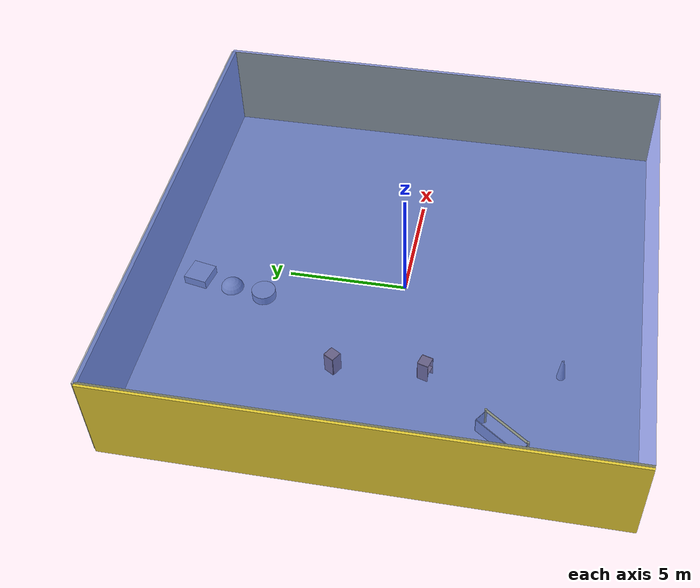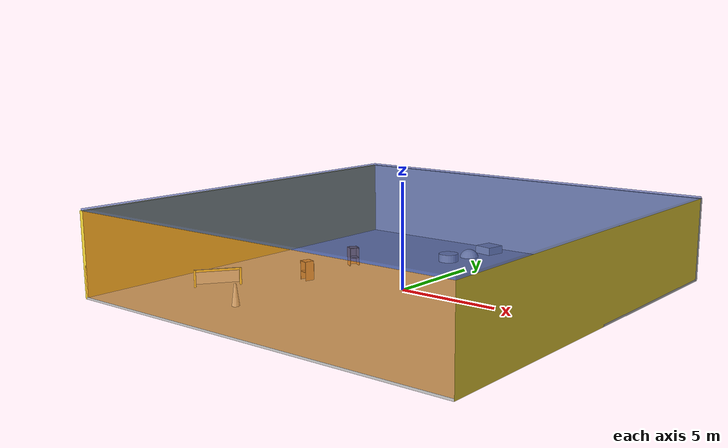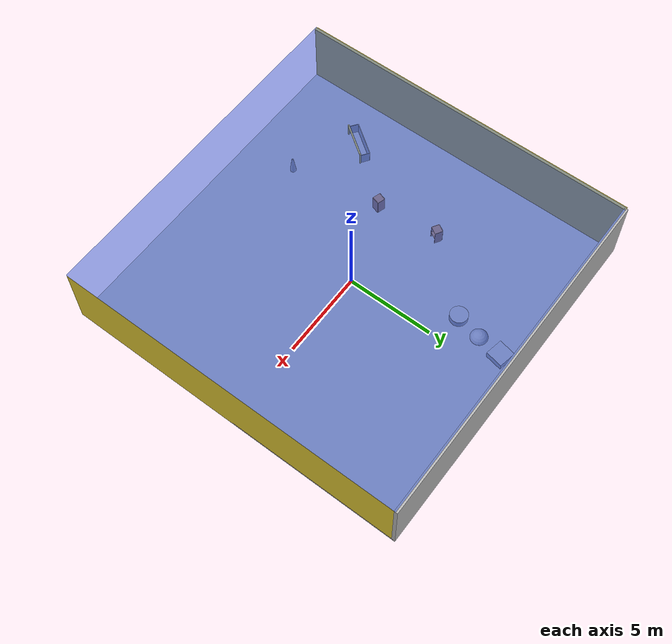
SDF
<sdf version="1.4">
 <world name="default">
  <physics type="ode">
   <max_step_size>0.001</max_step_size>
   <real_time_factor>1</real_time_factor>
   <real_time_update_rate>1000</real_time_update_rate>
   <gravity>0 0 -9.8</gravity>
  </physics>
  <scene><ambient>0.4 0.4 0.4 1</ambient><background>0.7 0.7 0.7 1</background><shadows>1</shadows></scene>
  <model name="Surrounding">
   <static>1</static>
   <link name="Ceiling">
    <collision name="Ceiling_Collision"><geometry><box><size>20 20 0.1</size></box></geometry></collision>
    <visual name="Ceiling_Visual">
     <geometry><box><size>20 20 0.1</size></box></geometry>
     <material>
      <script><uri>file://media/materials/scripts/gazebo.material</uri><name>Gazebo/BlueTransparent</name></script>
     </material>
    </visual>
    <pose>0 0 4.05 0 0 0</pose>
   </link>
   <link name="Wall_South">
    <collision name="Wall_South_Collision">
     <geometry><box><size>20 0 4</size></box></geometry>
     <pose>0 0 2 0 -0 0</pose>
    </collision>
    <visual name="Wall_South_Visual">
     <pose>0 0 2 0 -0 0</pose>
     <geometry><box><size>20 0 4</size></box></geometry>
     <material>
      <script>
       <uri>file://media/materials/scripts/gazebo.material</uri>
       <name>Gazebo/OrangeTransparent</name>
      </script>
     </material>
    </visual>
    <velocity_decay><linear>0</linear><angular>0</angular></velocity_decay>
    <pose>0 -10 0 0 -0 0</pose>
   </link>
   <link name="Wall_East">
    <collision name="Wall_21_Collision">
     <geometry><box><size>20 0 4</size></box></geometry>
     <pose>0 0 2 0 -0 0</pose>
    </collision>
    <visual name="Wall_21_Visual">
     <pose>0 0 2 0 -0 0</pose>
     <geometry><box><size>20 0 4</size></box></geometry>
     <material>
      <script><uri>file://media/materials/scripts/gazebo.material</uri><name>Gazebo/ZincYellow</name></script>
     </material>
    </visual>
    <velocity_decay><linear>0</linear><angular>0</angular></velocity_decay>
    <pose>10 0 0 0 -0 1.5708</pose>
   </link>
   <link name="Wall_North">
    <collision name="Wall_22_Collision">
     <geometry><box><size>20 0.2 4</size></box></geometry>
     <pose>0 0 2 0 -0 0</pose>
    </collision>
    <visual name="Wall_22_Visual">
     <pose>0 0 2 0 -0 0</pose>
     <geometry><box><size>20 0.2 4</size></box></geometry>
     <material>
      <script><uri>file://media/materials/scripts/gazebo.material</uri><name>Gazebo/LightOn</name></script>
     </material>
    </visual>
    <velocity_decay><linear>0</linear><angular>0</angular></velocity_decay>
    <pose>0 10 0 0 -0 0</pose>
   </link>
   <link name="Wall_West">
    <collision name="Wall_23_Collision">
     <geometry><box><size>20 0.2 4</size></box></geometry>
     <pose>0 0 2 0 -0 0</pose>
    </collision>
    <visual name="Wall_23_Visual">
     <pose>0 0 2 0 -0 0</pose>
     <geometry><box><size>20 0.2 4</size></box></geometry>
     <material>
      <script><uri>file://media/materials/scripts/gazebo.material</uri><name>Gazebo/ZincYellow</name></script>
     </material>
    </visual>
    <velocity_decay><linear>0</linear><angular>0</angular></velocity_decay>
    <pose>-10 0 0 0 0 -1.5708</pose>
   </link>
   <link name="Ground_link">
    <collision name="collision">
     <pose>0 0 .05 0 -0 0</pose>
     <geometry><box><size>20 20 0.1</size></box></geometry>
    </collision>
    <visual name="visual">
     <pose>0 0 .05 0 -0 0</pose>
     <geometry><box><size>20 20 0.1</size></box></geometry>
     <material>
      <script><uri>file://media/materials/scripts/gazebo.material</uri><name>Gazebo/LightOff</name></script>
     </material>
    </visual>
   </link>
   <static>1</static>
  </model>
  <spherical_coordinates>
   <surface_model>EARTH_WGS84</surface_model>
   <latitude_deg>0</latitude_deg>
   <longitude_deg>0</longitude_deg>
   <elevation>0</elevation>
   <heading_deg>0</heading_deg>
  </spherical_coordinates>
  <light name="lightball_0" type="diffuse">
   <diffuse>0.8 0.8 0.8 1</diffuse>
   <specular>0.2 0.2 0.2 1</specular>
   <attenuation>
    <range>100</range>
    <constant>0.7</constant>
    <linear>0.01</linear>
    <quadratic>0.001</quadratic>
   </attenuation>
   <direction>-0.5 0.1 -0.9</direction>
   <pose>8.61360150168 7.66941884912 1.32542060527 0 0 0</pose>
  </light>
  <light name="lightball_1" type="diffuse">
   <diffuse>0.8 0.8 0.8 1</diffuse>
   <specular>0.2 0.2 0.2 1</specular>
   <attenuation>
    <range>100</range>
    <constant>0.7</constant>
    <linear>0.01</linear>
    <quadratic>0.001</quadratic>
   </attenuation>
   <direction>-0.5 0.1 -0.9</direction>
   <pose>-7.6250813 -3.20270731093 1.68203188972 0 0 0</pose>
  </light>
  <light name="lightball_2" type="diffuse">
   <diffuse>0.8 0.8 0.8 1</diffuse>
   <specular>0.2 0.2 0.2 1</specular>
   <attenuation>
    <range>100</range>
    <constant>0.7</constant>
    <linear>0.01</linear>
    <quadratic>0.001</quadratic>
   </attenuation>
   <direction>-0.5 0.1 -0.9</direction>
   <pose>-4.08264213738 -2.43255054124 1.72184765137 0 0 0</pose>
  </light>
  <light name="lightball_3" type="diffuse">
   <diffuse>0.8 0.8 0.8 1</diffuse>
   <specular>0.2 0.2 0.2 1</specular>
   <attenuation>
    <range>100</range>
    <constant>0.7</constant>
    <linear>0.01</linear>
    <quadratic>0.001</quadratic>
   </attenuation>
   <direction>-0.5 0.1 -0.9</direction>
   <pose>-9.69860013715 -7.05533082856 1.91088562133 0 0 0</pose>
  </light>
  <light name="lightball_4" type="diffuse">
   <diffuse>0.8 0.8 0.8 1</diffuse>
   <specular>0.2 0.2 0.2 1</specular>
   <attenuation>
    <range>100</range>
    <constant>0.7</constant>
    <linear>0.01</linear>
    <quadratic>0.001</quadratic>
   </attenuation>
   <direction>-0.5 0.1 -0.9</direction>
   <pose>1.66485810036 -6.45032985883 3.03709217242 0 0 0</pose>
  </light>
  <light name="lightball_5" type="diffuse">
   <diffuse>0.8 0.8 0.8 1</diffuse>
   <specular>0.2 0.2 0.2 1</specular>
   <attenuation>
    <range>100</range>
    <constant>0.7</constant>
    <linear>0.01</linear>
    <quadratic>0.001</quadratic>
   </attenuation>
   <direction>-0.5 0.1 -0.9</direction>
   <pose>-8.83620800145 9.04672818305 0.962633889551 0 0 0</pose>
  </light>
  <light name="lightball_6" type="diffuse">
   <diffuse>0.8 0.8 0.8 1</diffuse>
   <specular>0.2 0.2 0.2 1</specular>
   <attenuation>
    <range>100</range>
    <constant>0.7</constant>
    <linear>0.01</linear>
    <quadratic>0.001</quadratic>
   </attenuation>
   <direction>-0.5 0.1 -0.9</direction>
   <pose>-7.94344641218 8.20546765698 0.573421124791 0 0 0</pose>
  </light>
  <light name="lightball_7" type="diffuse">
   <diffuse>0.8 0.8 0.8 1</diffuse>
   <specular>0.2 0.2 0.2 1</specular>
   <attenuation>
    <range>100</range>
    <constant>0.7</constant>
    <linear>0.01</linear>
    <quadratic>0.001</quadratic>
   </attenuation>
   <direction>-0.5 0.1 -0.9</direction>
   <pose>-0.464395370562 -7.29808664371 1.93818107689 0 0 0</pose>
  </light>
  <light name="lightball_8" type="diffuse">
   <diffuse>0.8 0.8 0.8 1</diffuse>
   <specular>0.2 0.2 0.2 1</specular>
   <attenuation>
    <range>100</range>
    <constant>0.7</constant>
    <linear>0.01</linear>
    <quadratic>0.001</quadratic>
   </attenuation>
   <direction>-0.5 0.1 -0.9</direction>
   <pose>8.12060764527 -5.68652472949 2.91218493236 0 0 0</pose>
  </light>
  <light name="lightball_9" type="diffuse">
   <diffuse>0.8 0.8 0.8 1</diffuse>
   <specular>0.2 0.2 0.2 1</specular>
   <attenuation>
    <range>100</range>
    <constant>0.7</constant>
    <linear>0.01</linear>
    <quadratic>0.001</quadratic>
   </attenuation>
   <direction>-0.5 0.1 -0.9</direction>
   <pose>-5.32196706411 6.8293625716 3.10129634335 0 0 0</pose>
  </light>
  <light name="lightball_10" type="diffuse">
   <diffuse>0.8 0.8 0.8 1</diffuse>
   <specular>0.2 0.2 0.2 1</specular>
   <attenuation>
    <range>100</range>
    <constant>0.7</constant>
    <linear>0.01</linear>
    <quadratic>0.001</quadratic>
   </attenuation>
   <direction>-0.5 0.1 -0.9</direction>
   <pose>7.17785248442 7.92132808992 1.22761172317 0 0 0</pose>
  </light>
  <light name="lightball_11" type="diffuse">
   <diffuse>0.8 0.8 0.8 1</diffuse>
   <specular>0.2 0.2 0.2 1</specular>
   <attenuation>
    <range>100</range>
    <constant>0.7</constant>
    <linear>0.01</linear>
    <quadratic>0.001</quadratic>
   </attenuation>
   <direction>-0.5 0.1 -0.9</direction>
   <pose>-4.49637164621 1.85173264397 2.95508496158 0 0 0</pose>
  </light>
  <light name="lightball_12" type="diffuse">
   <diffuse>0.8 0.8 0.8 1</diffuse>
   <specular>0.2 0.2 0.2 1</specular>
   <attenuation>
    <range>100</range>
    <constant>0.7</constant>
    <linear>0.01</linear>
    <quadratic>0.001</quadratic>
   </attenuation>
   <direction>-0.5 0.1 -0.9</direction>
   <pose>2.47336497698 4.22786188205 3.00676437042 0 0 0</pose>
  </light>
  <light name="lightball_13" type="diffuse">
   <diffuse>0.8 0.8 0.8 1</diffuse>
   <specular>0.2 0.2 0.2 1</specular>
   <attenuation>
    <range>100</range>
    <constant>0.7</constant>
    <linear>0.01</linear>
    <quadratic>0.001</quadratic>
   </attenuation>
   <direction>-0.5 0.1 -0.9</direction>
   <pose>2.04193229839 -3.68133607741 2.92289939822 0 0 0</pose>
  </light>
  <include>
   <uri>model://robocup_3Dsim_goal</uri>
   <pose>-6.96636392113 -5.03120822301 0 0 0 2.52331439107</pose>
  </include>
  <include>
   <uri>model://construction_cone</uri>
   <pose>-3.72723499217 -6.87321662683 0 0 0 0.973794025529</pose>
  </include>
  <include><uri>model://cabinet</uri><pose>-4.56044637551 -1.57511143251 0 0 0 1.280342761</pose></include>
  <include><uri>model://cabinet</uri><pose>-4.8367858007 2.08057913819 0 0 0 2.61070128839</pose></include>
  <include>
   <uri>model://textured_shapes</uri>
   <pose>-1.26889019941 7.26108692156 0 0 0 2.95095488819</pose>
  </include>
 </world>
</sdf>

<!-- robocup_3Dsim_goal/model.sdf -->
<sdf version="1.5">
  <model name="robocup_3d_goal">
    <static>true</static>
    <link name="left_post">
      <pose>0 1.05 0.45 0 0 0</pose>
      <collision name="collision">
        <geometry>
          <cylinder>
            <radius>0.05</radius>
            <length>0.9</length>
          </cylinder>
        </geometry>
      </collision>
      <visual name="visual">
        <geometry>
          <cylinder>
            <radius>0.05</radius>
            <length>0.9</length>
          </cylinder>
        </geometry>
        <material>
          <script>
            <uri>file://media/materials/scripts/gazebo.material</uri>
            <name>Gazebo/ZincYellow</name>
          </script>
        </material>
      </visual>
    </link>
    <link name="left_support_horiz_lower">
      <pose>0.30 1.05 0.01 0 0 0</pose>
      <collision name="collision">
        <geometry>
          <box>
            <size>0.50 0.02 0.02</size>
          </box>
        </geometry>
      </collision>
      <visual name="visual">
        <geometry>
          <box>
            <size>0.50 0.02 0.02</size>
          </box>
        </geometry>
        <material>
          <script>
            <uri>file://media/materials/scripts/gazebo.material</uri>
            <name>Gazebo/White</name>
          </script>
        </material>
      </visual>
    </link>
    <link name="left_support_horiz_upper">
      <pose>0.30 1.05 0.79 0 0 0</pose>
      <collision name="collision">
        <geometry>
          <box>
            <size>0.50 0.02 0.02</size>
          </box>
        </geometry>
      </collision>
      <visual name="visual">
        <geometry>
          <box>
            <size>0.50 0.02 0.02</size>
          </box>
        </geometry>
        <material>
          <script>
            <uri>file://media/materials/scripts/gazebo.material</uri>
            <name>Gazebo/White</name>
          </script>
        </material>
      </visual>
    </link>
    <link name="left_support_vertical">
      <pose>0.56 1.05 0.4 0 1.5708 0</pose>
      <collision name="collision">
        <geometry>
          <box>
            <size>0.80 0.02 0.02</size>
          </box>
        </geometry>
      </collision>
      <visual name="visual">
        <geometry>
          <box>
            <size>0.80 0.02 0.02</size>
          </box>
        </geometry>
        <material>
          <script>
            <uri>file://media/materials/scripts/gazebo.material</uri>
            <name>Gazebo/White</name>
          </script>
        </material>
      </visual>
    </link>
    <link name="right_support_horiz_lower">
      <pose>0.30 -1.05 0.01 0 0 0</pose>
      <collision name="collision">
        <geometry>
          <box>
            <size>0.50 0.02 0.02</size>
          </box>
        </geometry>
      </collision>
      <visual name="visual">
        <geometry>
          <box>
            <size>0.50 0.02 0.02</size>
          </box>
        </geometry>
        <material>
          <script>
            <uri>file://media/materials/scripts/gazebo.material</uri>
            <name>Gazebo/White</name>
          </script>
        </material>
      </visual>
    </link>
    <link name="right_support_horiz_upper">
      <pose>0.30 -1.05 0.79 0 0 0</pose>
      <collision name="collision">
        <geometry>
          <box>
            <size>0.50 0.02 0.02</size>
          </box>
        </geometry>
      </collision>
      <visual name="visual">
        <geometry>
          <box>
            <size>0.50 0.02 0.02</size>
          </box>
        </geometry>
        <material>
          <script>
            <uri>file://media/materials/scripts/gazebo.material</uri>
            <name>Gazebo/White</name>
          </script>
        </material>
      </visual>
    </link>
    <link name="right_support_vertical">
      <pose>0.56 -1.05 0.4 0 1.5708 0</pose>
      <collision name="collision">
        <geometry>
          <box>
            <size>0.80 0.02 0.02</size>
          </box>
        </geometry>
      </collision>
      <visual name="visual">
        <geometry>
          <box>
            <size>0.80 0.02 0.02</size>
          </box>
        </geometry>
        <material>
          <script>
            <uri>file://media/materials/scripts/gazebo.material</uri>
            <name>Gazebo/White</name>
          </script>
        </material>
      </visual>
    </link>
    <link name="center_support_horiz_lower">
      <pose>0.56 0 0.01 0 1.5708 0</pose>
      <collision name="collision">
        <geometry>
          <box>
            <size>0.02 2.08 0.02</size>
          </box>
        </geometry>
      </collision>
      <visual name="visual">
        <geometry>
          <box>
            <size>0.02 2.08 0.02</size>
          </box>
        </geometry>
        <material>
          <script>
            <uri>file://media/materials/scripts/gazebo.material</uri>
            <name>Gazebo/White</name>
          </script>
        </material>
      </visual>
    </link>
    <link name="center_support_horiz_upper">
      <pose>0.56 0 0.79 0 1.5708 0</pose>
      <collision name="collision">
        <geometry>
          <box>
            <size>0.02 2.08 0.02</size>
          </box>
        </geometry>
      </collision>
      <visual name="visual">
        <geometry>
          <box>
            <size>0.02 2.08 0.02</size>
          </box>
        </geometry>
        <material>
          <script>
            <uri>file://media/materials/scripts/gazebo.material</uri>
            <name>Gazebo/White</name>
          </script>
        </material>
      </visual>
    </link>
    <link name="right_post">
      <pose>0 -1.05 0.45 0 0 0</pose>
      <collision name="collision">
        <geometry>
          <cylinder>
            <radius>0.05</radius>
            <length>0.9</length>
          </cylinder>
        </geometry>
      </collision>
      <visual name="visual">
        <geometry>
          <cylinder>
            <radius>0.05</radius>
            <length>0.9</length>
          </cylinder>
        </geometry>
        <material>
          <script>
            <uri>file://media/materials/scripts/gazebo.material</uri>
            <name>Gazebo/ZincYellow</name>
          </script>
        </material>
      </visual>
    </link>
    <link name="crossbar">
      <pose>0 0 0.85 1.57 1.57 0</pose>
      <collision name="collision">
        <geometry>
          <cylinder>
            <radius>0.05</radius>
            <length>2.0</length>
          </cylinder>
        </geometry>
      </collision>
      <visual name="visual">
        <geometry>
          <cylinder>
            <radius>0.05</radius>
            <length>2.0</length>
          </cylinder>
        </geometry>
        <material>
          <script>
            <uri>file://media/materials/scripts/gazebo.material</uri>
            <name>Gazebo/ZincYellow</name>
          </script>
        </material>
      </visual>
    </link>
    <link name="center_net">
      <pose>0.56 0 0.40 0 0 0</pose>
      <collision name="collision">
        <geometry>
          <box>
            <size>0.01 2.1 0.80</size>
          </box>
        </geometry>
      </collision>
      <visual name="visual">
        <geometry>
          <box>
            <size>0.01 2.1 0.80</size>
          </box>
        </geometry>
        <material>
          <script>
            <uri>model://../model_source/models/robocup09_spl_field/materials/scripts/</uri>
            <uri>model://../model_source/models/robocup09_spl_field/materials/textures/</uri>
            <name>RoboCup/Net</name>
          </script>
        </material>
      </visual>
    </link>
    <link name="left_net">
      <pose>0.30 1.05 0.40 0 0 0</pose>
      <collision name="collision">
        <geometry>
          <box>
            <size>0.50 0.01 0.76</size>
          </box>
        </geometry>
      </collision>
      <visual name="visual">
        <geometry>
          <box>
            <size>0.50 0.01 0.76</size>
          </box>
        </geometry>
        <material>
          <script>
            <uri>model://../model_source/models/robocup09_spl_field/materials/scripts/</uri>
            <uri>model://../model_source/models/robocup09_spl_field/materials/textures/</uri>
            <name>RoboCup/Net</name>
          </script>
        </material>
      </visual>
    </link>
    <link name="right_net">
      <pose>0.30 -1.05 0.40 0 0 0</pose>
      <collision name="collision">
        <geometry>
          <box>
            <size>0.50 0.01 0.76</size>
          </box>
        </geometry>
      </collision>
      <visual name="visual">
        <geometry>
          <box>
            <size>0.50 0.01 0.76</size>
          </box>
        </geometry>
        <material>
          <script>
            <uri>model://../model_source/models/robocup09_spl_field/materials/scripts/</uri>
            <uri>model://../model_source/models/robocup09_spl_field/materials/textures/</uri>
            <name>RoboCup/Net</name>
          </script>
        </material>
      </visual>
    </link>
  </model>
</sdf>

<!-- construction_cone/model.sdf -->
<sdf version="1.5">
  <model name="Construction Cone">
    <link name="link">
      <collision name="collision">
        <geometry>
          <mesh>
            <scale>10 10 10</scale>
            <uri>file://isr-testbed/construction_cone/meshes/construction_cone.dae</uri>
          </mesh>
        </geometry>
      </collision>
      <visual name="visual">
        <geometry>
          <mesh>
            <scale>10 10 10</scale>
            <uri>file://isr-testbed/construction_cone/meshes/construction_cone.dae</uri>
          </mesh>
        </geometry>
      </visual>
    </link>
  </model>
</sdf>

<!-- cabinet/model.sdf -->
<sdf version="1.5">
  <model name="cabinet">
    <static>true</static>
    <link name="cabinet_bottom_plate">
      <inertial>
        <pose>0 0 -1 0 0 0</pose>
        <inertia>
          <ixx>2.050000</ixx>
          <ixy>0</ixy>
          <ixz>0</ixz>
          <iyy>2.050000</iyy>
          <iyz>0</iyz>
          <izz>2.050000</izz>
        </inertia>
        <mass>25.000000</mass>
      </inertial>
      <collision name="cabinet_bottom_plate_geom">
        <pose>0 0 0.010000 0 0 0</pose>
        <geometry>
          <box>
            <size>0.450000 0.450000 0.020000</size>
          </box>
        </geometry>
      </collision>
      <visual name="cabinet_bottom_plate_geom_visual">
        <pose>0 0 0.010000 0 0 0</pose>
        <geometry>
          <box>
            <size>0.450000 0.450000 0.020000</size>
          </box>
        </geometry>
        <material>
          <script>
            <uri>model://media/materials/scripts/gazebo.material</uri>
            <name>Gazebo/Wood</name>
          </script>
        </material>
      </visual>
      <collision name="cabinet_bottom_plate_geom_cabinet_back_plate">
        <pose>0.235000 0 0.510000 0 0 0</pose>
        <geometry>
          <box>
            <size>0.020000 0.450000 1.020000</size>
          </box>
        </geometry>
      </collision>
      <visual name="cabinet_bottom_plate_geom_cabinet_back_plate_visual">
        <pose>0.235000 0 0.510000 0 0 0</pose>
        <geometry>
          <box>
            <size>0.020000 0.450000 1.020000</size>
          </box>
        </geometry>
        <material>
          <script>
            <uri>model://media/materials/scripts/gazebo.material</uri>
            <name>Gazebo/Wood</name>
          </script>
        </material>
      </visual>
      <collision name="cabinet_bottom_plate_geom_cabinet_left_plate">
        <pose>0 0.235000 0.510000 0 0 0</pose>
        <geometry>
          <box>
            <size>0.450000 0.020000 1.020000</size>
          </box>
        </geometry>
      </collision>
      <visual name="cabinet_bottom_plate_geom_cabinet_left_plate_visual">
        <pose>0 0.235000 0.510000 0 0 0</pose>
        <geometry>
          <box>
            <size>0.450000 0.020000 1.020000</size>
          </box>
        </geometry>
        <material>
          <script>
            <uri>model://media/materials/scripts/gazebo.material</uri>
            <name>Gazebo/Wood</name>
          </script>
        </material>
      </visual>
      <collision name="cabinet_bottom_plate_geom_cabinet_middle_plate">
        <pose>0 0 0.510000 0 0 0</pose>
        <geometry>
          <box>
            <size>0.450000 0.450000 0.020000</size>
          </box>
        </geometry>
      </collision>
      <visual name="cabinet_bottom_plate_geom_cabinet_middle_plate_visual">
        <pose>0 0 0.510000 0 0 0</pose>
        <geometry>
          <box>
            <size>0.450000 0.450000 0.020000</size>
          </box>
        </geometry>
        <material>
          <script>
            <uri>model://media/materials/scripts/gazebo.material</uri>
            <name>Gazebo/Wood</name>
          </script>
        </material>
      </visual>
      <collision name="cabinet_bottom_plate_geom_cabinet_right_plate">
        <pose>0 -0.235000 0.510000 0 0 0</pose>
        <geometry>
          <box>
            <size>0.450000 0.020000 1.020000</size>
          </box>
        </geometry>
      </collision>
      <visual name="cabinet_bottom_plate_geom_cabinet_right_plate_visual">
        <pose>0 -0.235000 0.510000 0 0 0</pose>
        <geometry>
          <box>
            <size>0.450000 0.020000 1.020000</size>
          </box>
        </geometry>
        <material>
          <script>
            <uri>model://media/materials/scripts/gazebo.material</uri>
            <name>Gazebo/Wood</name>
          </script>
        </material>
      </visual>
      <collision name="cabinet_bottom_plate_geom_cabinet_top_plate">
        <pose>0 0 1.010000 0 0 0</pose>
        <geometry>
          <box>
            <size>0.450000 0.450000 0.020000</size>
          </box>
        </geometry>
      </collision>
      <visual name="cabinet_bottom_plate_geom_cabinet_top_plate_visual">
        <pose>0 0 1.010000 0 0 0</pose>
        <geometry>
          <box>
            <size>0.450000 0.450000 0.020000</size>
          </box>
        </geometry>
        <material>
          <script>
            <uri>model://media/materials/scripts/gazebo.material</uri>
            <name>Gazebo/Wood</name>
          </script>
        </material>
      </visual>
    </link>
  </model>
</sdf>

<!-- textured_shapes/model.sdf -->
<sdf version="1.6">
  <model name="textured_shapes">
    <pose>0 0 0.5 0 0 0</pose>
    <link name="box">
      <pose>0 -1.5 0 0 0 0</pose>
      <collision name="collision">
        <geometry>
          <box>
            <size>1 1 1</size>
          </box>
        </geometry>
      </collision>
      <visual name="visual">
        <geometry>
          <box>
            <size>1 1 1</size>
          </box>
        </geometry>
        <material>
          <script>
            <uri>model://../model_source/models/textured_shapes/materials/scripts</uri>
            <uri>model://../model_source/models/textured_shapes/materials/textures</uri>
            <name>TexturedShape/Squares</name>
          </script>
        </material>
      </visual>
    </link>
    <link name="sphere">
      <collision name="collision">
        <geometry>
          <sphere>
            <radius>0.5</radius>
          </sphere>
        </geometry>
      </collision>
      <visual name="visual">
        <geometry>
          <sphere>
            <radius>0.5</radius>
          </sphere>
        </geometry>
        <material>
          <script>
            <uri>model://../model_source/models/textured_shapes/materials/scripts</uri>
            <uri>model://../model_source/models/textured_shapes/materials/textures</uri>
            <name>TexturedShape/Squares</name>
          </script>
        </material>
      </visual>
    </link>
    <link name="cylinder">
      <pose>0 1.5 0 0 0 0</pose>
      <collision name="collision">
        <geometry>
          <cylinder>
            <radius>0.5</radius>
            <length>1</length>
          </cylinder>
        </geometry>
      </collision>
      <visual name="visual">
        <geometry>
          <cylinder>
            <radius>0.5</radius>
            <length>1</length>
          </cylinder>
        </geometry>
        <material>
          <script>
            <uri>model://../model_source/models/textured_shapes/materials/scripts</uri>
            <uri>model://../model_source/models/textured_shapes/materials/textures</uri>
            <name>TexturedShape/Squares</name>
          </script>
        </material>
      </visual>
    </link>
  </model>
</sdf>
